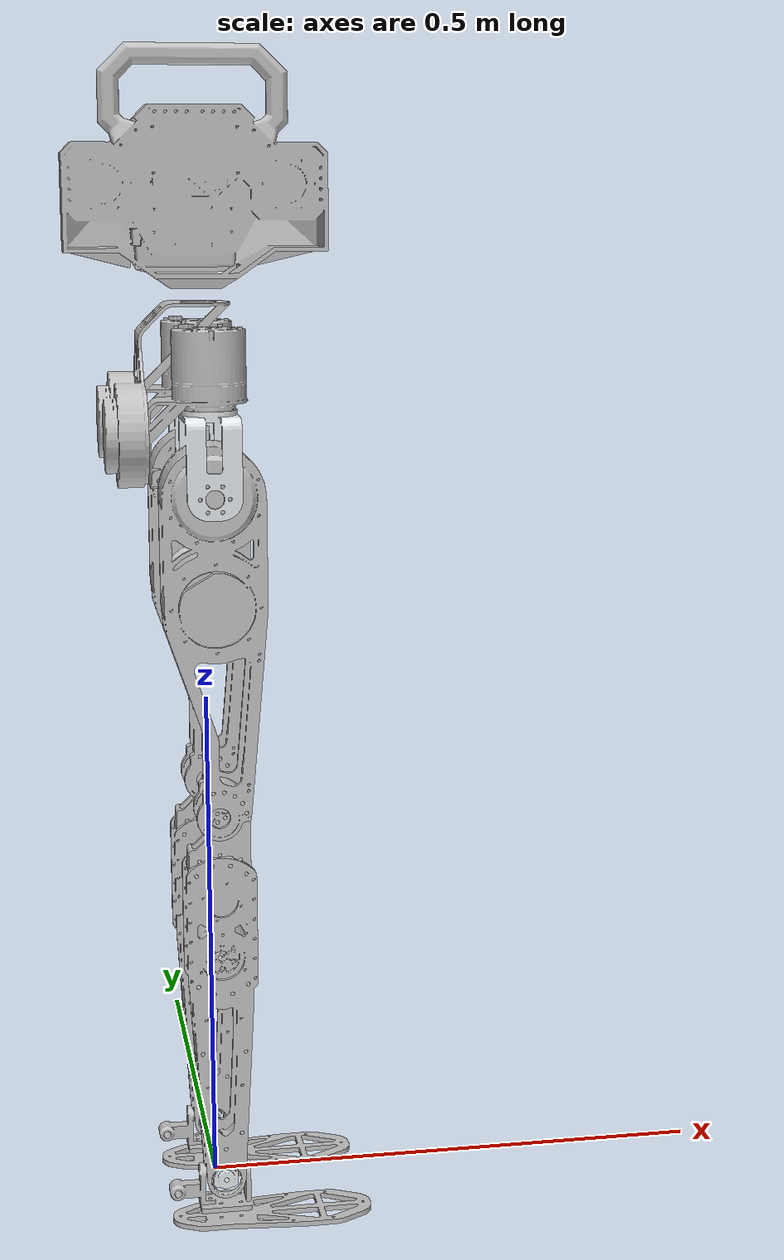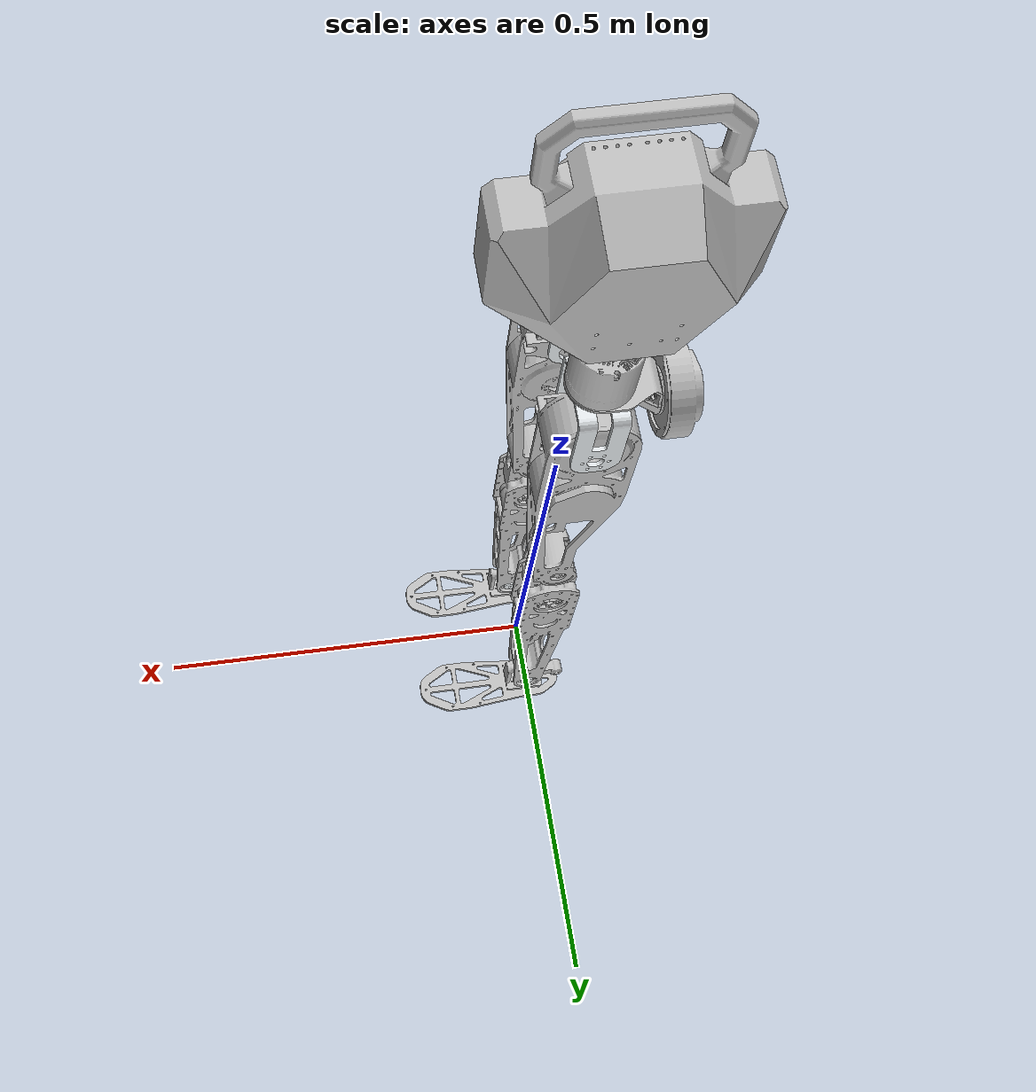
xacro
<?xml version="1.0" encoding="utf-8"?>

<robot name="humanoid" xmlns:xacro="http://wiki.ros.org/xacro">

  <xacro:include filename="$(find humanoid_description)/urdf/humanoid_description.urdf" />

  <link name="base_link" />

  <joint name="base_to_chest" type="fixed">
      <parent link="base_link" />
      <child link = "chest_link" />
      <origin xyz="0 0 1" rpy="-1.5708 0 0" />
  </joint>

</robot>

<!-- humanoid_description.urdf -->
<robot
  name="humanoid_description">
  <link
    name="chest_link">
    <inertial>
      <origin
        xyz="-8.28293679618886E-05 0.00245095349909037 -0.0400554897853038"
        rpy="0 0 0" />
      <mass
        value="3.6222448891911" />
      <inertia
        ixx="0.00927736621449688"
        ixy="5.4183285357689E-06"
        ixz="-8.1587912127408E-06"
        iyy="0.0068269139110782"
        iyz="2.81661094771366E-05"
        izz="0.00659637371781693" />
    </inertial>
    <visual>
      <origin
        xyz="0 0 0"
        rpy="0 0 0" />
      <geometry>
        <mesh
          filename="package://humanoid_description/meshes/base_link.STL" />
      </geometry>
      <material
        name="">
        <color
          rgba="0.752941176470588 0.752941176470588 0.752941176470588 1" />
      </material>
    </visual>
    <collision>
      <origin
        xyz="0 0 0"
        rpy="0 0 0" />
      <geometry>
        <mesh
          filename="package://humanoid_description/meshes/base_link.STL" />
      </geometry>
    </collision>
  </link>
  <link
    name="link1">
    <inertial>
      <origin
        xyz="-0.0728434544984589 4.19142224609348E-05 -0.116189406983065"
        rpy="0 0 0" />
      <mass
        value="4.01130857217461" />
      <inertia
        ixx="0.00549719316458641"
        ixy="2.72266840238933E-06"
        ixz="-0.000275818830944953"
        iyy="0.00344725687710746"
        iyz="-4.83377004397469E-06"
        izz="0.00309978532231872" />
    </inertial>
    <visual>
      <origin
        xyz="0 0 0"
        rpy="0 0 0" />
      <geometry>
        <mesh
          filename="package://humanoid_description/meshes/link1.STL" />
      </geometry>
      <material
        name="">
        <color
          rgba="0.752941176470588 0.752941176470588 0.752941176470588 1" />
      </material>
    </visual>
    <collision>
      <origin
        xyz="0 0 0"
        rpy="0 0 0" />
      <geometry>
        <mesh
          filename="package://humanoid_description/meshes/link1.STL" />
      </geometry>
    </collision>
  </link>
  <joint
    name="joint1"
    type="revolute">
    <origin
      xyz="0 0.111 0"
      rpy="1.5708 0 0" />
    <parent
      link="chest_link" />
    <child
      link="link1" />
    <axis
      xyz="0 0 1" />
    <limit
      lower="-3"
      upper="3"
      effort="0"
      velocity="0" />
  </joint>
  <link
    name="link2">
    <inertial>
      <origin
        xyz="0.000674554136897957 -7.98707268084842E-05 0.0611451747770943"
        rpy="0 0 0" />
      <mass
        value="1.83896451263237" />
      <inertia
        ixx="0.00130997269012774"
        ixy="-2.52148752381525E-06"
        ixz="-2.9497450008976E-05"
        iyy="0.00136283021362173"
        iyz="6.56080458221765E-06"
        izz="0.00127826257199311" />
    </inertial>
    <visual>
      <origin
        xyz="0 0 0"
        rpy="0 0 0" />
      <geometry>
        <mesh
          filename="package://humanoid_description/meshes/link2.STL" />
      </geometry>
      <material
        name="">
        <color
          rgba="0.752941176470588 0.752941176470588 0.752941176470588 1" />
      </material>
    </visual>
    <collision>
      <origin
        xyz="0 0 0"
        rpy="0 0 0" />
      <geometry>
        <mesh
          filename="package://humanoid_description/meshes/link2.STL" />
      </geometry>
    </collision>
  </link>
  <joint
    name="joint2"
    type="revolute">
    <origin
      xyz="0 0.065 -0.12"
      rpy="0 0 0" />
    <parent
      link="link1" />
    <child
      link="link2" />
    <axis
      xyz="1 0 0" />
    <limit
      lower="-3"
      upper="3"
      effort="0"
      velocity="0" />
  </joint>
  <link
    name="link3">
    <inertial>
      <origin
        xyz="0.00146790465106376 0.00300000000000006 0.0135654067812014"
        rpy="0 0 0" />
      <mass
        value="0.138996037602082" />
      <inertia
        ixx="0.000167643562788158"
        ixy="1.47057028258303E-19"
        ixz="-8.86208732105541E-06"
        iyy="0.000299255663714549"
        iyz="-1.90919704350535E-20"
        izz="0.00021142987879861" />
    </inertial>
    <visual>
      <origin
        xyz="0 0 0"
        rpy="0 0 0" />
      <geometry>
        <mesh
          filename="package://humanoid_description/meshes/link3.STL" />
      </geometry>
      <material
        name="">
        <color
          rgba="0.898039215686275 0.917647058823529 0.929411764705882 1" />
      </material>
    </visual>
    <collision>
      <origin
        xyz="0 0 0"
        rpy="0 0 0" />
      <geometry>
        <mesh
          filename="package://humanoid_description/meshes/link3.STL" />
      </geometry>
    </collision>
  </link>
  <joint
    name="joint3"
    type="revolute">
    <origin
      xyz="0 0 0"
      rpy="3.1416 0 1.5708" />
    <parent
      link="link2" />
    <child
      link="link3" />
    <axis
      xyz="0 0 1" />
    <limit
      lower="-3"
      upper="3"
      effort="0"
      velocity="0" />
  </joint>
  <link
    name="link4">
    <inertial>
      <origin
        xyz="0.068079854468498 -0.00841217862527573 -0.000217594704341859"
        rpy="0 0 0" />
      <mass
        value="6.77292310387962" />
      <inertia
        ixx="0.0053553058691625"
        ixy="3.63771461334271E-06"
        ixz="7.70199358196544E-05"
        iyy="0.00895648949029985"
        iyz="-2.80338942122995E-06"
        izz="0.00681492065848877" />
    </inertial>
    <visual>
      <origin
        xyz="0 0 0"
        rpy="0 0 0" />
      <geometry>
        <mesh
          filename="package://humanoid_description/meshes/link4.STL" />
      </geometry>
      <material
        name="">
        <color
          rgba="0.752941176470588 0.752941176470588 0.752941176470588 1" />
      </material>
    </visual>
    <collision>
      <origin
        xyz="0 0 0"
        rpy="0 0 0" />
      <geometry>
        <mesh
          filename="package://humanoid_description/meshes/link4.STL" />
      </geometry>
    </collision>
  </link>
  <joint
    name="joint4"
    type="revolute">
    <origin
      xyz="0 0.003 0.05"
      rpy="1.5667 -1.5708 0" />
    <parent
      link="link3" />
    <child
      link="link4" />
    <axis
      xyz="0 0.99999 -0.0041068" />
    <limit
      lower="-3"
      upper="3"
      effort="0"
      velocity="0" />
  </joint>
  <link
    name="link5">
    <inertial>
      <origin
        xyz="0.160102551038823 0.000457350145105207 -0.00865375901396317"
        rpy="0 0 0" />
      <mass
        value="0.656738353244321" />
      <inertia
        ixx="0.000233874118922673"
        ixy="3.53165224336002E-06"
        ixz="2.16391215308251E-09"
        iyy="0.00174493115545611"
        iyz="8.70897215953489E-09"
        izz="0.00193811132241233" />
    </inertial>
    <visual>
      <origin
        xyz="0 0 0"
        rpy="0 0 0" />
      <geometry>
        <mesh
          filename="package://humanoid_description/meshes/link5.STL" />
      </geometry>
      <material
        name="">
        <color
          rgba="0.752941176470588 0.752941176470588 0.752941176470588 1" />
      </material>
    </visual>
    <collision>
      <origin
        xyz="0 0 0"
        rpy="0 0 0" />
      <geometry>
        <mesh
          filename="package://humanoid_description/meshes/link5.STL" />
      </geometry>
    </collision>
  </link>
  <joint
    name="joint5"
    type="revolute">
    <origin
      xyz="0.317 0 0"
      rpy="-1.5749 0 0" />
    <parent
      link="link4" />
    <child
      link="link5" />
    <axis
      xyz="0 0 1" />
    <limit
      lower="-3"
      upper="3"
      effort="0"
      velocity="0" />
  </joint>
  <link
    name="link6">
    <inertial>
      <origin
        xyz="3.69282989604036E-10 -2.58542243170012E-09 0.00865001083659624"
        rpy="0 0 0" />
      <mass
        value="0.0405476705231489" />
      <inertia
        ixx="7.90323317140378E-06"
        ixy="3.64342320493557E-15"
        ixz="1.7843211279735E-12"
        iyy="7.51103795693389E-06"
        iyz="4.94677657785183E-13"
        izz="3.56410737465162E-06" />
    </inertial>
    <visual>
      <origin
        xyz="0 0 0"
        rpy="0 0 0" />
      <geometry>
        <mesh
          filename="package://humanoid_description/meshes/link6.STL" />
      </geometry>
      <material
        name="">
        <color
          rgba="0.898039215686275 0.917647058823529 0.929411764705882 1" />
      </material>
    </visual>
    <collision>
      <origin
        xyz="0 0 0"
        rpy="0 0 0" />
      <geometry>
        <mesh
          filename="package://humanoid_description/meshes/link6.STL" />
      </geometry>
    </collision>
  </link>
  <joint
    name="joint6"
    type="revolute">
    <origin
      xyz="0.373 0 0"
      rpy="-3.1416 0 1.5708" />
    <parent
      link="link5" />
    <child
      link="link6" />
    <axis
      xyz="0 0 1" />
    <limit
      lower="-3"
      upper="3"
      effort="0"
      velocity="0" />
  </joint>
  <link
    name="link7">
    <inertial>
      <origin
        xyz="0.0199754227606495 0.00864999999990936 -0.0354657161472895"
        rpy="0 0 0" />
      <mass
        value="0.144339298666143" />
      <inertia
        ixx="4.01687098929373E-05"
        ixy="2.54118580061172E-18"
        ixz="-3.79536043980265E-06"
        iyy="0.000258843457882055"
        iyz="-5.84163087956415E-20"
        izz="0.000282296824497863" />
    </inertial>
    <visual>
      <origin
        xyz="0 0 0"
        rpy="0 0 0" />
      <geometry>
        <mesh
          filename="package://humanoid_description/meshes/link7.STL" />
      </geometry>
      <material
        name="">
        <color
          rgba="0.752941176470588 0.752941176470588 0.752941176470588 1" />
      </material>
    </visual>
    <collision>
      <origin
        xyz="0 0 0"
        rpy="0 0 0" />
      <geometry>
        <mesh
          filename="package://humanoid_description/meshes/link7.STL" />
      </geometry>
    </collision>
  </link>
  <joint
    name="joint7"
    type="revolute">
    <origin
      xyz="0 0 0"
      rpy="1.5708 0 0" />
    <parent
      link="link6" />
    <child
      link="link7" />
    <axis
      xyz="1 0 0" />
    <limit
      lower="-3"
      upper="3"
      effort="0"
      velocity="0" />
  </joint>
  <link
    name="link8">
    <inertial>
      <origin
        xyz="0.000674554136897979 -7.98707268086368E-05 0.0611451747770972"
        rpy="0 0 0" />
      <mass
        value="1.83896451263238" />
      <inertia
        ixx="0.00130997269012774"
        ixy="-2.521487523817E-06"
        ixz="-2.94974500089755E-05"
        iyy="0.00136283021362174"
        iyz="6.56080458221212E-06"
        izz="0.00127826257199312" />
    </inertial>
    <visual>
      <origin
        xyz="0 0 0"
        rpy="0 0 0" />
      <geometry>
        <mesh
          filename="package://humanoid_description/meshes/link8.STL" />
      </geometry>
      <material
        name="">
        <color
          rgba="0.752941176470588 0.752941176470588 0.752941176470588 1" />
      </material>
    </visual>
    <collision>
      <origin
        xyz="0 0 0"
        rpy="0 0 0" />
      <geometry>
        <mesh
          filename="package://humanoid_description/meshes/link8.STL" />
      </geometry>
    </collision>
  </link>
  <joint
    name="joint8"
    type="revolute">
    <origin
      xyz="0 -0.065 -0.12"
      rpy="0 0 0" />
    <parent
      link="link1" />
    <child
      link="link8" />
    <axis
      xyz="1 0 0" />
    <limit
      lower="-3"
      upper="3"
      effort="0"
      velocity="0" />
  </joint>
  <link
    name="link9">
    <inertial>
      <origin
        xyz="0.00146790465106367 -0.00300000000000037 0.0135654067811973"
        rpy="0 0 0" />
      <mass
        value="0.138996037602082" />
      <inertia
        ixx="0.000167643562788158"
        ixy="1.19046518291902E-19"
        ixz="-8.8620873210554E-06"
        iyy="0.000299255663714548"
        iyz="-1.59095887874616E-20"
        izz="0.000211429878798609" />
    </inertial>
    <visual>
      <origin
        xyz="0 0 0"
        rpy="0 0 0" />
      <geometry>
        <mesh
          filename="package://humanoid_description/meshes/link9.STL" />
      </geometry>
      <material
        name="">
        <color
          rgba="0.898039215686275 0.917647058823529 0.929411764705882 1" />
      </material>
    </visual>
    <collision>
      <origin
        xyz="0 0 0"
        rpy="0 0 0" />
      <geometry>
        <mesh
          filename="package://humanoid_description/meshes/link9.STL" />
      </geometry>
    </collision>
  </link>
  <joint
    name="joint9"
    type="revolute">
    <origin
      xyz="0 0 0"
      rpy="3.1416 0 -1.5708" />
    <parent
      link="link8" />
    <child
      link="link9" />
    <axis
      xyz="0 0 1" />
    <limit
      lower="-3"
      upper="3"
      effort="0"
      velocity="0" />
  </joint>
  <link
    name="link10">
    <inertial>
      <origin
        xyz="0.0679580308029274 0.0084112140687064 -0.000977595595389468"
        rpy="0 0 0" />
      <mass
        value="6.77292310387962" />
      <inertia
        ixx="0.0053582396642984"
        ixy="3.93464481434201E-06"
        ixz="8.74297913019507E-05"
        iyy="0.00895647639661024"
        iyz="1.40455649327707E-06"
        izz="0.00681199995704249" />
    </inertial>
    <visual>
      <origin
        xyz="0 0 0"
        rpy="0 0 0" />
      <geometry>
        <mesh
          filename="package://humanoid_description/meshes/link10.STL" />
      </geometry>
      <material
        name="">
        <color
          rgba="0.752941176470588 0.752941176470588 0.752941176470588 1" />
      </material>
    </visual>
    <collision>
      <origin
        xyz="0 0 0"
        rpy="0 0 0" />
      <geometry>
        <mesh
          filename="package://humanoid_description/meshes/link10.STL" />
      </geometry>
    </collision>
  </link>
  <joint
    name="joint10"
    type="revolute">
    <origin
      xyz="0 -0.003 0.05"
      rpy="3.1416 -1.5605 1.5708" />
    <parent
      link="link9" />
    <child
      link="link10" />
    <axis
      xyz="0 1 0" />
    <limit
      lower="-3"
      upper="3"
      effort="0"
      velocity="0" />
  </joint>
  <link
    name="link11">
    <inertial>
      <origin
        xyz="0.160102551038827 0.000457350145114362 0.0086462409860318"
        rpy="0 0 0" />
      <mass
        value="0.656738353244321" />
      <inertia
        ixx="0.000233874118922674"
        ixy="3.53165224327244E-06"
        ixz="2.16391215324514E-09"
        iyy="0.00174493115545611"
        iyz="8.70897215959495E-09"
        izz="0.00193811132241233" />
    </inertial>
    <visual>
      <origin
        xyz="0 0 0"
        rpy="0 0 0" />
      <geometry>
        <mesh
          filename="package://humanoid_description/meshes/link11.STL" />
      </geometry>
      <material
        name="">
        <color
          rgba="0.752941176470588 0.752941176470588 0.752941176470588 1" />
      </material>
    </visual>
    <collision>
      <origin
        xyz="0 0 0"
        rpy="0 0 0" />
      <geometry>
        <mesh
          filename="package://humanoid_description/meshes/link11.STL" />
      </geometry>
    </collision>
  </link>
  <joint
    name="joint11"
    type="revolute">
    <origin
      xyz="0.31698 0 -0.0032702"
      rpy="-1.5708 0.010316 0" />
    <parent
      link="link10" />
    <child
      link="link11" />
    <axis
      xyz="0 0 1" />
    <limit
      lower="-3"
      upper="3"
      effort="0"
      velocity="0" />
  </joint>
  <link
    name="link12">
    <inertial>
      <origin
        xyz="3.69283013022803E-10 -2.58542354192315E-09 -0.00864998916340047"
        rpy="0 0 0" />
      <mass
        value="0.040547670523149" />
      <inertia
        ixx="7.90323317140379E-06"
        ixy="3.64341020522476E-15"
        ixz="1.78432113059311E-12"
        iyy="7.5110379569339E-06"
        iyz="4.94677657458429E-13"
        izz="3.56410737465161E-06" />
    </inertial>
    <visual>
      <origin
        xyz="0 0 0"
        rpy="0 0 0" />
      <geometry>
        <mesh
          filename="package://humanoid_description/meshes/link12.STL" />
      </geometry>
      <material
        name="">
        <color
          rgba="0.898039215686275 0.917647058823529 0.929411764705882 1" />
      </material>
    </visual>
    <collision>
      <origin
        xyz="0 0 0"
        rpy="0 0 0" />
      <geometry>
        <mesh
          filename="package://humanoid_description/meshes/link12.STL" />
      </geometry>
    </collision>
  </link>
  <joint
    name="joint12"
    type="revolute">
    <origin
      xyz="0.373 0 0"
      rpy="-3.1416 0 1.5708" />
    <parent
      link="link11" />
    <child
      link="link12" />
    <axis
      xyz="0 0 1" />
    <limit
      lower="-3"
      upper="3"
      effort="0"
      velocity="0" />
  </joint>
  <link
    name="link13">
    <inertial>
      <origin
        xyz="0.0199754227606124 -0.00865000000005162 -0.0354657161472758"
        rpy="0 0 0" />
      <mass
        value="0.144339298666143" />
      <inertia
        ixx="4.01687098929373E-05"
        ixy="2.45617541501818E-18"
        ixz="-3.79536043980261E-06"
        iyy="0.000258843457882055"
        iyz="-6.30931755640207E-20"
        izz="0.000282296824497863" />
    </inertial>
    <visual>
      <origin
        xyz="0 0 0"
        rpy="0 0 0" />
      <geometry>
        <mesh
          filename="package://humanoid_description/meshes/link13.STL" />
      </geometry>
      <material
        name="">
        <color
          rgba="0.752941176470588 0.752941176470588 0.752941176470588 1" />
      </material>
    </visual>
    <collision>
      <origin
        xyz="0 0 0"
        rpy="0 0 0" />
      <geometry>
        <mesh
          filename="package://humanoid_description/meshes/link13.STL" />
      </geometry>
    </collision>
  </link>
  <joint
    name="joint13"
    type="revolute">
    <origin
      xyz="0 0 0"
      rpy="1.5708 0 0" />
    <parent
      link="link12" />
    <child
      link="link13" />
    <axis
      xyz="1 0 0" />
    <limit
      lower="-3"
      upper="3"
      effort="0"
      velocity="0" />
  </joint>
</robot>
